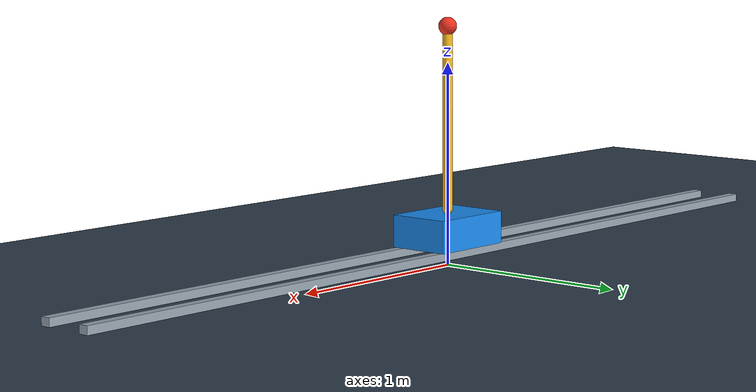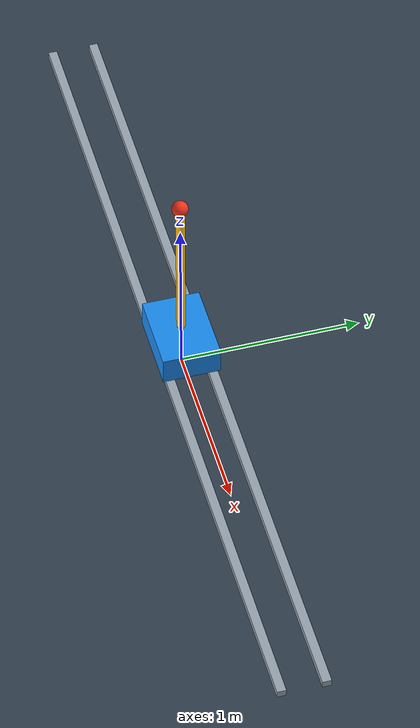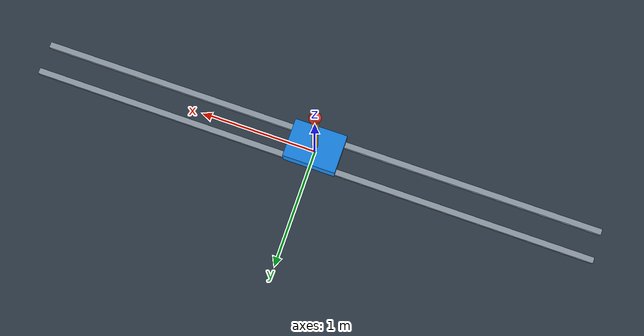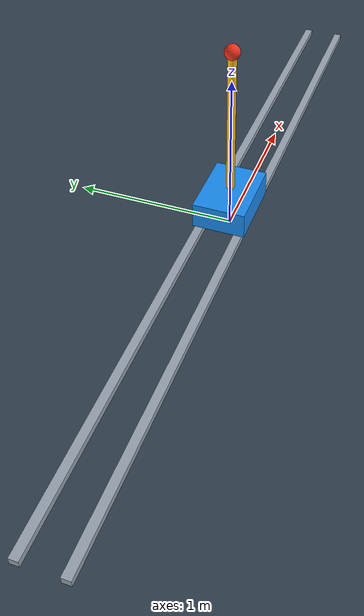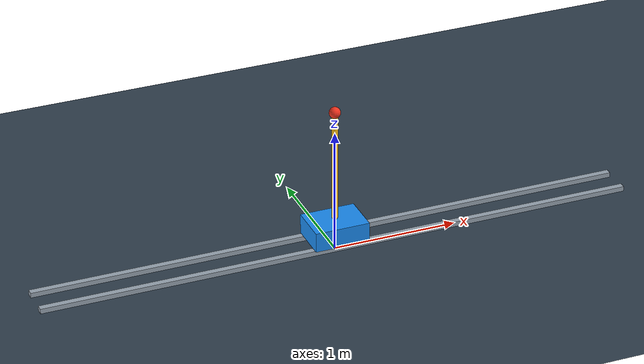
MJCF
<mujoco model="Hands-on: cart and pole (no balancing controller)">
  <compiler angle="degree"/>
  <option timestep="0.002" gravity="0 0 -9.81" integrator="implicitfast"/>
  <statistic center="0 0 0.6" extent="2.4"/>
  <visual>
    <global azimuth="90" elevation="-18" offwidth="960" offheight="640"/>
    <headlight diffuse="0.7 0.7 0.7" ambient="0.3 0.3 0.3"/>
  </visual>
  <default>
    <geom friction="0.7 0.02 0.001"/>
    <joint damping="0.01"/>
  </default>
  <asset>
    <texture name="checker" type="2d" builtin="checker" width="256" height="256"
             rgb1="0.15 0.20 0.25" rgb2="0.22 0.29 0.35"/>
    <material name="floor" texture="checker" texrepeat="8 8"/>
  </asset>
  <worldbody>
    <light pos="-1 -2 4" dir="0 0 -1"/>
    <geom name="floor" type="plane" size="5 5 0.1" material="floor"/>
    <!-- The rail is visual; the slide joint constrains the cart to left/right. -->
    <geom name="rail_front" type="box" pos="0 -0.12 0.08" size="2.4 0.025 0.02"
          rgba="0.6 0.65 0.7 1" contype="0" conaffinity="0"/>
    <geom name="rail_back" type="box" pos="0 0.12 0.08" size="2.4 0.025 0.02"
          rgba="0.6 0.65 0.7 1" contype="0" conaffinity="0"/>
    <body name="cart" pos="0 0 0.18">
      <joint name="cart_slide" type="slide" axis="1 0 0" range="-2.1 2.1" damping="0.05"/>
      <!-- Box size is HALF-width, HALF-depth, HALF-height, in metres. -->
      <geom name="cart_box" type="box" size="0.22 0.16 0.08" mass="1"
            rgba="0.10 0.55 0.95 1"/>
      <body name="pole" pos="0 0 0.10">
        <joint name="pole_hinge" type="hinge" axis="0 1 0" damping="0.005"/>
        <!-- A 0.9 m pole, standing up from its hinge. -->
        <geom name="pole_rod" type="capsule" fromto="0 0 0 0 0 0.9" size="0.025"
              mass="0.25" rgba="1 0.75 0.1 1"/>
        <geom name="pole_tip" type="sphere" pos="0 0 0.9" size="0.045"
              mass="0.04" rgba="0.95 0.20 0.12 1"/>
      </body>
    </body>
  </worldbody>
  <contact>
    <exclude body1="cart" body2="pole"/>
  </contact>
  <actuator>
    <!-- Manual force slider in the viewer's Control panel; initially zero. -->
    <motor name="cart_motor" joint="cart_slide" ctrlrange="-100 100"/>
  </actuator>
  <sensor>
    <jointpos name="cart_position" joint="cart_slide"/>
    <jointpos name="pole_angle" joint="pole_hinge"/>
    <jointvel name="pole_angular_speed" joint="pole_hinge"/>
  </sensor>
</mujoco>
